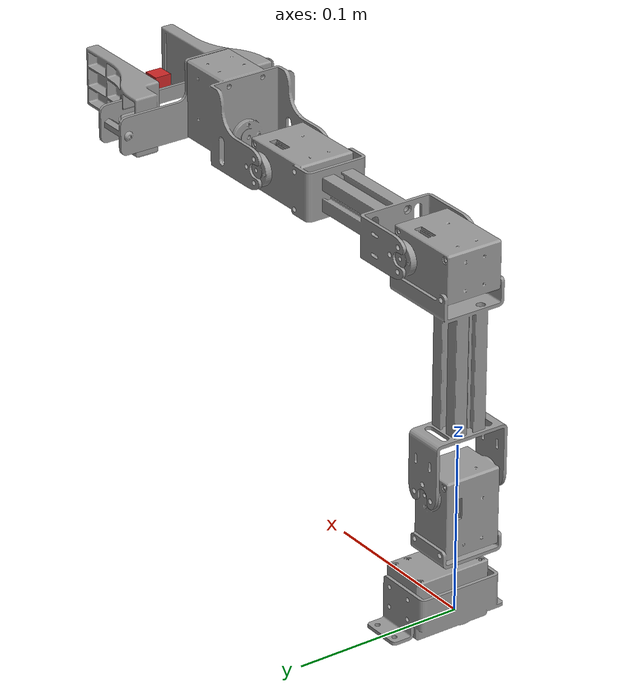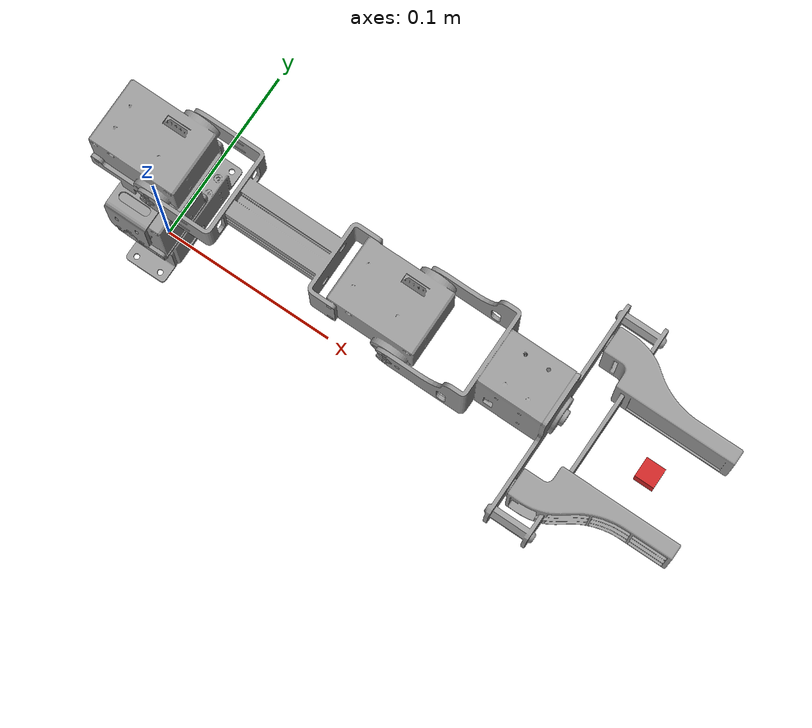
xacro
<?xml version="1.0"?>
<robot xmlns:xacro="http://ros.org/wiki/xacro">

  <!-- Include MiniArm Gazebo Parameter -->
  <xacro:include filename="$(find transbot_description)/urdf/miniarm.gazebo.xacro"/>

  <!-- Include MiniArm Transmission -->
  <xacro:include filename="$(find transbot_description)/urdf/miniarm.transmission.xacro"/>

  <!-- Link 1 -->
  <link name="link1">
    <visual>
      <origin xyz="0 0 0" rpy="0 0 0"/>
      <geometry>
        <mesh filename="package://transbot_description/meshes/arm/chain_link1.stl" scale="0.001 0.001 0.001"/>
      </geometry>
      <material name="grey"/>
    </visual>

    <collision>
      <origin xyz="0 0 0" rpy="0 0 0"/>
      <geometry>
        <mesh filename="package://transbot_description/meshes/arm/chain_link1.stl" scale="0.001 0.001 0.001"/>
      </geometry>
    </collision>

     <inertial>
      <origin xyz="3.0876154e-04 0.0000000e+00 -1.2176461e-04" />
      <mass value="7.9119962e-02" />
      <inertia ixx="1.2505234e-05" ixy="0.0" ixz="-1.7855208e-07"
               iyy="2.1898364e-05" iyz="0.0"
               izz="1.9267361e-05" />
    </inertial>
  </link>

  <!-- Joint 1 -->
  <joint name="joint1" type="revolute">
    <parent link="link1"/>
    <child link="link2"/>
    <origin xyz="0.0 0.0 0.017" rpy="0 0 0"/>
    <axis xyz="0 0 1"/>
    <limit velocity="4.8" effort="1" lower="${-pi*0.9}" upper="${pi*0.9}" />
  </joint>

  <!--  Link 2 -->
  <link name="link2">
    <visual>
      <origin xyz="0 0 0.0207" rpy="0 0 0"/>
      <geometry>
        <mesh filename="package://transbot_description/meshes/arm/chain_link2.stl" scale="0.001 0.001 0.001"/>
      </geometry>
      <material name="grey"/>
    </visual>

    <collision>
      <origin xyz="0 0 0.0207" rpy="0 0 0"/>
      <geometry>
        <mesh filename="package://transbot_description/meshes/arm/chain_link2.stl" scale="0.001 0.001 0.001"/>
      </geometry>
    </collision>

     <inertial>
      <origin xyz="-3.0184870e-04 5.4043684e-04 ${0.018 + 2.9433464e-02}" />
      <mass value="9.8406837e-02" />
      <inertia ixx="3.4543422e-05" ixy="-1.6031095e-08" ixz="-3.8375155e-07"
               iyy="3.2689329e-05" iyz="2.8511935e-08"
               izz="1.8850320e-05" />
    </inertial>
  </link>

  <!--  Joint 2 -->
  <joint name="joint2" type="revolute">
    <parent link="link2"/>
    <child link="link3"/>
    <origin xyz="0.0 0.0 0.060" rpy="0 0 0"/>
    <axis xyz="0 1 0"/>
    <limit velocity="4.8" effort="1" lower="${-pi*0.57}" upper="${pi*0.5}" />
  </joint>

  <!--  Link 3 -->
  <link name="link3">
    <visual>
      <origin xyz="0 0 0" rpy="0 0 0"/>
      <geometry>
        <mesh filename="package://transbot_description/meshes/arm/chain_link3.stl" scale="0.001 0.001 0.001"/>
      </geometry>
      <material name="grey"/>
    </visual>

    <collision>
      <origin xyz="0 0 0" rpy="0 0 0"/>
      <geometry>
        <mesh filename="package://transbot_description/meshes/arm/chain_link3.stl" scale="0.001 0.001 0.001"/>
      </geometry>
    </collision>

     <inertial>
      <origin xyz="1.0308393e-02 3.7743363e-04 1.0170197e-01" />
      <mass value="1.3850917e-01" />
      <inertia ixx="3.3055381e-04" ixy="-9.7940978e-08" ixz="-3.8505711e-05"
               iyy="3.4290447e-04" iyz="-1.5717516e-06"
               izz="6.0346498e-05" />
    </inertial>
  </link>

  <!--  Joint 3 -->
  <joint name="joint3" type="revolute">
    <parent link="link3"/>
    <child link="link4"/>
    <origin xyz="0.024 0 0.128" rpy="0 0 0"/>
    <axis xyz="0 1 0"/>
    <limit velocity="4.8" effort="1" lower="${-pi*0.3}" upper="${pi*0.44}" />
  </joint>

  <!--  Link 4 -->
  <link name="link4">
    <visual>
      <origin xyz="0 0 0" rpy="0 0 0"/>
      <geometry>
        <mesh filename="package://transbot_description/meshes/arm/chain_link4.stl" scale="0.001 0.001 0.001"/>
      </geometry>
      <material name="grey"/>
    </visual>

    <collision>
      <origin xyz="0 0 0" rpy="0 0 0"/>
      <geometry>
        <mesh filename="package://transbot_description/meshes/arm/chain_link4.stl" scale="0.001 0.001 0.001"/>
      </geometry>
    </collision>

     <inertial>
      <origin xyz="9.0909590e-02 3.8929816e-04 2.2413279e-04" />
      <mass value="1.3274562e-01" />
      <inertia ixx="3.0654178e-05" ixy="-1.2764155e-06" ixz="-2.6874417e-07"
               iyy="2.4230292e-04" iyz="1.1559550e-08"
               izz="2.5155057e-04" />
    </inertial>
  </link>

  <!--  Joint 4 -->
  <joint name="joint4" type="revolute">
    <parent link="link4"/>
    <child link="link5"/>
    <origin xyz="0.129 0.0 0.0" rpy="0 0 0"/>
    <axis xyz="0 1 0"/>
    <limit velocity="4.8" effort="1" lower="${-pi*0.57}" upper="${pi*0.65}" />
  </joint>

  <!--  Link 5 -->
  <link name="link5">
    <visual>
      <origin xyz="0 0 0" rpy="0 0 0"/>
      <geometry>
        <mesh filename="package://transbot_description/meshes/arm/chain_link5.stl" scale="0.001 0.001 0.001"/>
      </geometry>
      <material name="grey"/>
    </visual>

    <collision>
      <origin xyz="0 0 0" rpy="0 0 0"/>
      <geometry>
        <mesh filename="package://transbot_description/meshes/arm/chain_link5.stl" scale="0.001 0.001 0.001"/>
      </geometry>
    </collision>

    <inertial>
      <origin xyz="4.4206755e-02 3.6839985e-07 8.9142216e-03" />
      <mass value="1.0e-03" />
      <inertia ixx="1.0e-03" ixy="0.0" ixz="0.0"
               iyy="1.0e-03" iyz="0.0"
               izz="1.0e-03" />
    </inertial>
  </link>

  <!--  Gripper link -->
  <link name="gripper_link">
    <visual>
      <origin xyz="0.0 0.0 0" rpy="0 0 0"/>
      <geometry>
        <mesh filename="package://transbot_description/meshes/arm/chain_link_grip_l.stl" scale="0.001 0.001 0.001"/>
      </geometry>
      <material name="grey"/>
    </visual>

    <collision>
      <origin xyz="0.0 0.0 0" rpy="0 0 0"/>
      <geometry>
        <mesh filename="package://transbot_description/meshes/arm/chain_link_grip_l.stl" scale="0.001 0.001 0.001"/>
      </geometry>
    </collision>

    <inertial>
      <origin xyz="0 0 0" />
      <mass value="1.0e-03" />
      <inertia ixx="1.0e-03" ixy="0.0" ixz="0.0"
               iyy="1.0e-03" iyz="0.0"
               izz="1.0e-03" />
    </inertial>
  </link>

  <!--  Gripper joint -->
  <joint name="gripper" type="prismatic">
    <parent link="link5"/>
    <child link="gripper_link"/>
    <origin xyz="0.098 0.021 0.0" rpy="0 0 0"/>
    <axis xyz="0 1 0"/>
    <limit velocity="4.8" effort="1" lower="-0.010" upper="0.019" />
  </joint>

  <!--  Gripper link sub -->
  <link name="gripper_link_sub">
    <visual>
      <origin xyz="0.0 -0.0 0" rpy="0 0 0"/>
      <geometry>
        <mesh filename="package://transbot_description/meshes/arm/chain_link_grip_r.stl" scale="0.001 0.001 0.001"/>
      </geometry>
      <material name="grey"/>
    </visual>

    <collision>
      <origin xyz="0.0 -0.0 0" rpy="0 0 0"/>
      <geometry>
        <mesh filename="package://transbot_description/meshes/arm/chain_link_grip_r.stl" scale="0.001 0.001 0.001"/>
      </geometry>
    </collision>

    <inertial>
      <origin xyz="0 0 0" />
      <mass value="1.0e-03" />
      <inertia ixx="1.0e-03" ixy="0.0" ixz="0.0"
               iyy="1.0e-03" iyz="0.0"
               izz="1.0e-03" />
    </inertial>
  </link>

  <!--  Gripper joint sub -->
  <joint name="gripper_sub" type="prismatic">
    <parent link="link5"/>
    <child link="gripper_link_sub"/>
    <origin xyz="0.098 -0.021 0" rpy="0 0 0"/>
    <axis xyz="0 -1 0"/>
    <limit velocity="4.8" effort="1" lower="-0.010" upper="0.019" />
    <mimic joint="gripper" multiplier="1"/>
  </joint>

  <!-- end effector joint -->
  <joint name="end_effector_joint" type="fixed">
    <origin xyz="0.126 0.0 0.0" rpy="0 0 0"/>
    <parent link="link5"/>
    <child link="end_effector_link"/>
  </joint>

  <!-- end effector link -->
  <link name="end_effector_link">
    <visual>
      <origin xyz="0 0 0" rpy="0 0 0"/>
      <geometry>
        <box size="0.01 0.01 0.01" />
      </geometry>
      <material name="red"/>
     </visual>

    <inertial>
      <origin xyz="0 0 0" />
      <mass value="1.0e-03" />
      <inertia ixx="1.0e-03" ixy="0.0" ixz="0.0"
               iyy="1.0e-03" iyz="0.0"
               izz="1.0e-03" />
    </inertial>
  </link>

</robot>
